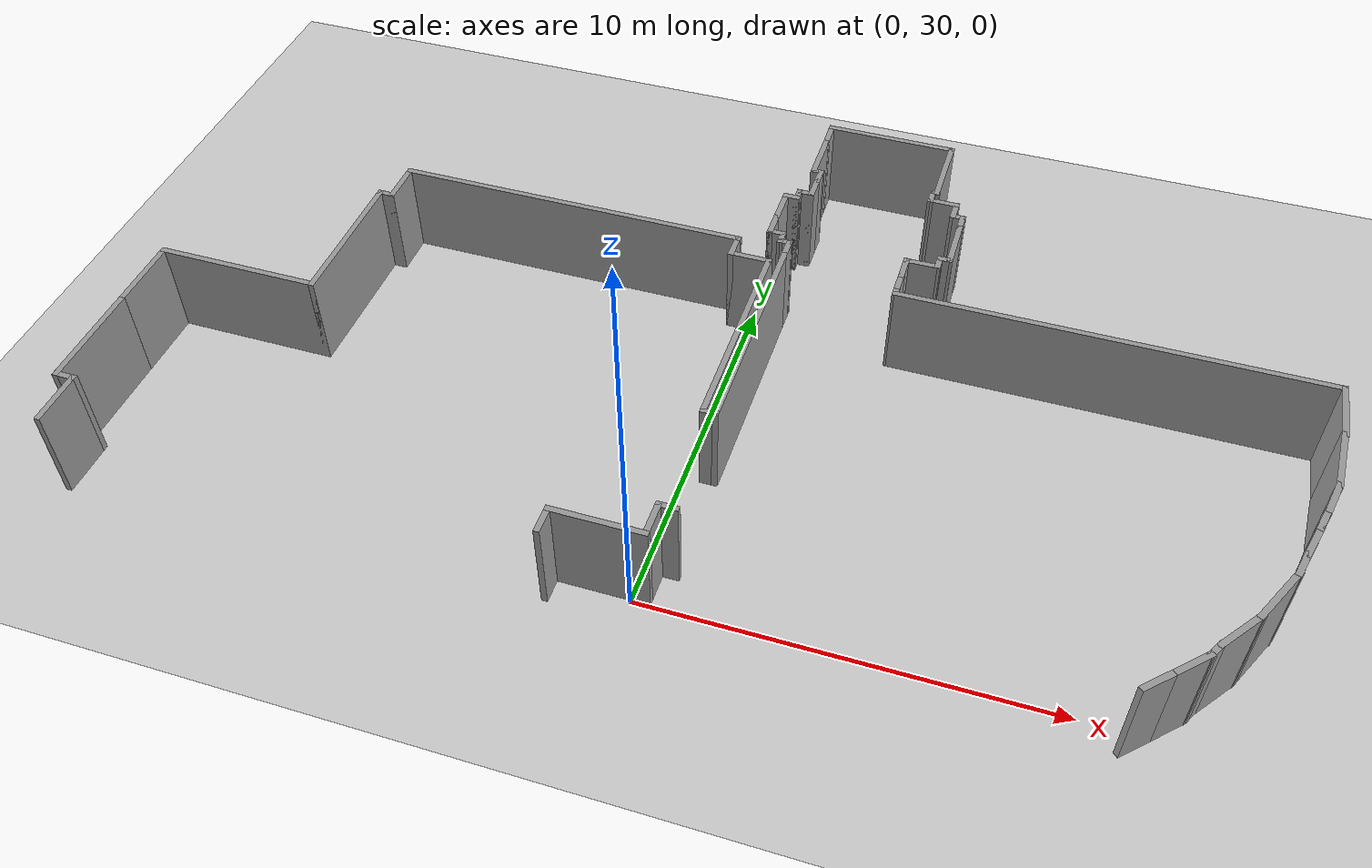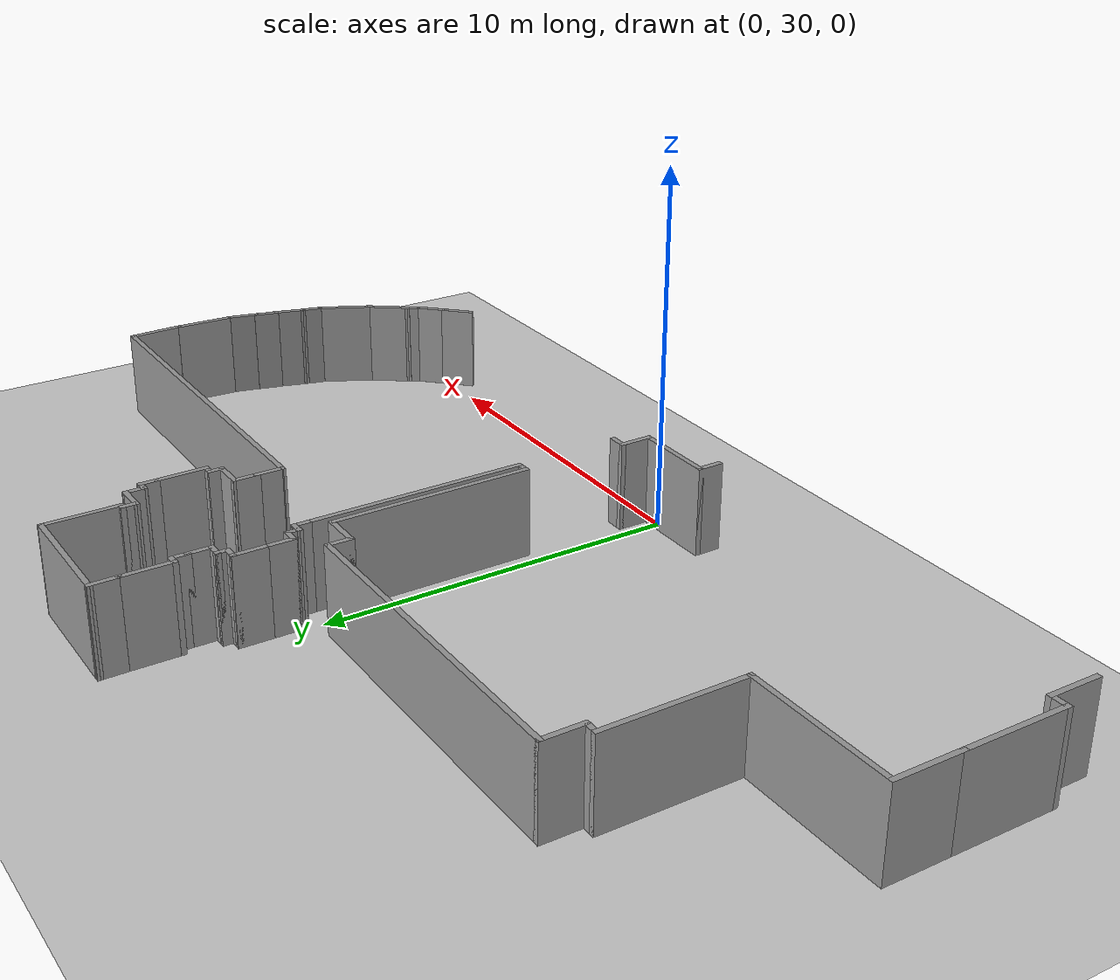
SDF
<sdf version="1.6">
 <world name="default">
  <model name="ground_plane">
   <static>1</static>
   <link name="link">
    <collision name="collision">
     <geometry><plane><normal>0 0 1</normal><size>100 100</size></plane></geometry>
     <surface><friction><ode><mu>100</mu><mu2>50</mu2></ode></friction></surface>
    </collision>
    <visual name="visual">
     <cast_shadows>0</cast_shadows>
     <geometry><plane><normal>0 0 1</normal><size>100 100</size></plane></geometry>
     <material>
      <script><uri>file://media/materials/scripts/gazebo.material</uri><name>Gazebo/Grey</name></script>
     </material>
    </visual>
   </link>
  </model>
  <model name="volen.world">
   <pose>-0.11623 -0.129362 0 0 -0 0</pose>
   <link name="Wall_100">
    <collision name="Wall_100_Collision">
     <geometry><box><size>1.35577 0.15 2.5</size></box></geometry>
     <pose>0 0 1.25 0 -0 0</pose>
    </collision>
    <visual name="Wall_100_Visual">
     <pose>0 0 1.25 0 -0 0</pose>
     <geometry><box><size>1.35577 0.15 2.5</size></box></geometry>
     <material>
      <script><uri>file://media/materials/scripts/gazebo.material</uri><name>Gazebo/Grey</name></script>
      <ambient>1 1 1 1</ambient>
     </material>
    </visual>
    <pose>12.7994 31.5829 0 0 0 -2.21664</pose>
   </link>
   <link name="Wall_101">
    <collision name="Wall_101_Collision">
     <geometry><box><size>0.5 0.15 2.5</size></box></geometry>
     <pose>0 0 1.25 0 -0 0</pose>
    </collision>
    <visual name="Wall_101_Visual">
     <pose>0 0 1.25 0 -0 0</pose>
     <geometry><box><size>0.5 0.15 2.5</size></box></geometry>
     <material>
      <script><uri>file://media/materials/scripts/gazebo.material</uri><name>Gazebo/Grey</name></script>
      <ambient>1 1 1 1</ambient>
     </material>
    </visual>
    <pose>12.349 30.9499 0 0 0 -2.0944</pose>
   </link>
   <link name="Wall_102">
    <collision name="Wall_102_Collision">
     <geometry><box><size>1 0.15 2.5</size></box></geometry>
     <pose>0 0 1.25 0 -0 0</pose>
    </collision>
    <visual name="Wall_102_Visual">
     <pose>0 0 1.25 0 -0 0</pose>
     <geometry><box><size>1 0.15 2.5</size></box></geometry>
     <material>
      <script><uri>file://media/materials/scripts/gazebo.material</uri><name>Gazebo/Grey</name></script>
      <ambient>1 1 1 1</ambient>
     </material>
    </visual>
    <pose>11.961 30.4978 0 0 0 -2.35619</pose>
   </link>
   <link name="Wall_103">
    <collision name="Wall_103_Collision">
     <geometry><box><size>1 0.15 2.5</size></box></geometry>
     <pose>0 0 1.25 0 -0 0</pose>
    </collision>
    <visual name="Wall_103_Visual">
     <pose>0 0 1.25 0 -0 0</pose>
     <geometry><box><size>1 0.15 2.5</size></box></geometry>
     <material>
      <script><uri>file://media/materials/scripts/gazebo.material</uri><name>Gazebo/Grey</name></script>
      <ambient>1 1 1 1</ambient>
     </material>
    </visual>
    <pose>11.36 29.8968 0 0 0 -2.35619</pose>
   </link>
   <link name="Wall_303">
    <collision name="Wall_303_Collision">
     <geometry><box><size>0.55 0.15 2.5</size></box></geometry>
     <pose>0 0 1.25 0 -0 0</pose>
    </collision>
    <visual name="Wall_303_Visual">
     <pose>0 0 1.25 0 -0 0</pose>
     <geometry><box><size>0.55 0.15 2.5</size></box></geometry>
     <material>
      <script><uri>file://media/materials/scripts/gazebo.material</uri><name>Gazebo/Grey</name></script>
      <ambient>1 1 1 1</ambient>
     </material>
    </visual>
    <pose>0.69523 31.1034 0 0 -0 3.14159</pose>
   </link>
   <link name="Wall_305">
    <collision name="Wall_305_Collision">
     <geometry><box><size>1 0.15 2.5</size></box></geometry>
     <pose>0 0 1.25 0 -0 0</pose>
    </collision>
    <visual name="Wall_305_Visual">
     <pose>0 0 1.25 0 -0 0</pose>
     <geometry><box><size>1 0.15 2.5</size></box></geometry>
     <material>
      <script><uri>file://media/materials/scripts/gazebo.material</uri><name>Gazebo/Grey</name></script>
      <ambient>1 1 1 1</ambient>
     </material>
    </visual>
    <pose>0.49523 30.6784 0 0 0 -1.5708</pose>
   </link>
   <link name="Wall_306">
    <collision name="Wall_306_Collision">
     <geometry><box><size>2.4 0.15 2.5</size></box></geometry>
     <pose>0 0 1.25 0 -0 0</pose>
    </collision>
    <visual name="Wall_306_Visual">
     <pose>0 0 1.25 0 -0 0</pose>
     <geometry><box><size>2.4 0.15 2.5</size></box></geometry>
     <material>
      <script><uri>file://media/materials/scripts/gazebo.material</uri><name>Gazebo/Grey</name></script>
      <ambient>1 1 1 1</ambient>
     </material>
    </visual>
    <pose>-0.62977 30.2534 0 0 -0 3.14159</pose>
   </link>
   <link name="Wall_308">
    <collision name="Wall_308_Collision">
     <geometry><box><size>0.756924 0.15 2.5</size></box></geometry>
     <pose>0 0 1.25 0 -0 0</pose>
    </collision>
    <visual name="Wall_308_Visual">
     <pose>0 0 1.25 0 -0 0</pose>
     <geometry><box><size>0.756924 0.15 2.5</size></box></geometry>
     <material>
      <script><uri>file://media/materials/scripts/gazebo.material</uri><name>Gazebo/Grey</name></script>
      <ambient>1 1 1 1</ambient>
     </material>
    </visual>
    <pose>-1.75477 29.9499 0 0 0 -1.5708</pose>
   </link>
   <link name="Wall_335">
    <collision name="Wall_335_Collision">
     <geometry><box><size>1.5 0.15 2.5</size></box></geometry>
     <pose>0 0 1.25 0 -0 0</pose>
    </collision>
    <visual name="Wall_335_Visual">
     <pose>0 0 1.25 0 -0 0</pose>
     <geometry><box><size>1.5 0.15 2.5</size></box></geometry>
     <material>
      <script><uri>file://media/materials/scripts/gazebo.material</uri><name>Gazebo/Grey</name></script>
      <ambient>1 1 1 1</ambient>
     </material>
    </visual>
    <pose>-13.8948 29.8614 0 0 -0 1.5708</pose>
   </link>
   <link name="Wall_336">
    <collision name="Wall_336_Collision">
     <geometry><box><size>0.6 0.15 2.5</size></box></geometry>
     <pose>0 0 1.25 0 -0 0</pose>
    </collision>
    <visual name="Wall_336_Visual">
     <pose>0 0 1.25 0 -0 0</pose>
     <geometry><box><size>0.6 0.15 2.5</size></box></geometry>
     <material>
      <script><uri>file://media/materials/scripts/gazebo.material</uri><name>Gazebo/Grey</name></script>
      <ambient>1 1 1 1</ambient>
     </material>
    </visual>
    <pose>-14.1198 30.5364 0 0 -0 3.14159</pose>
   </link>
   <link name="Wall_338">
    <collision name="Wall_338_Collision">
     <geometry><box><size>3 0.15 2.5</size></box></geometry>
     <pose>0 0 1.25 0 -0 0</pose>
    </collision>
    <visual name="Wall_338_Visual">
     <pose>0 0 1.25 0 -0 0</pose>
     <geometry><box><size>3 0.15 2.5</size></box></geometry>
     <material>
      <script><uri>file://media/materials/scripts/gazebo.material</uri><name>Gazebo/Grey</name></script>
      <ambient>1 1 1 1</ambient>
     </material>
    </visual>
    <pose>-14.3448 31.9614 0 0 -0 1.5708</pose>
   </link>
   <link name="Wall_340">
    <collision name="Wall_340_Collision">
     <geometry><box><size>1.98692 0.15 2.5</size></box></geometry>
     <pose>0 0 1.25 0 -0 0</pose>
    </collision>
    <visual name="Wall_340_Visual">
     <pose>0 0 1.25 0 -0 0</pose>
     <geometry><box><size>1.98692 0.15 2.5</size></box></geometry>
     <material>
      <script><uri>file://media/materials/scripts/gazebo.material</uri><name>Gazebo/Grey</name></script>
      <ambient>1 1 1 1</ambient>
     </material>
    </visual>
    <pose>-14.3448 34.3049 0 0 -0 1.5708</pose>
   </link>
   <link name="Wall_341">
    <collision name="Wall_341_Collision">
     <geometry><box><size>4.39 0.15 2.5</size></box></geometry>
     <pose>0 0 1.25 0 -0 0</pose>
    </collision>
    <visual name="Wall_341_Visual">
     <pose>0 0 1.25 0 -0 0</pose>
     <geometry><box><size>4.39 0.15 2.5</size></box></geometry>
     <material>
      <script><uri>file://media/materials/scripts/gazebo.material</uri><name>Gazebo/Grey</name></script>
      <ambient>1 1 1 1</ambient>
     </material>
    </visual>
    <pose>-12.2248 35.2234 0 0 -0 0</pose>
   </link>
   <link name="Wall_343">
    <collision name="Wall_343_Collision">
     <geometry><box><size>4 0.15 2.5</size></box></geometry>
     <pose>0 0 1.25 0 -0 0</pose>
    </collision>
    <visual name="Wall_343_Visual">
     <pose>0 0 1.25 0 -0 0</pose>
     <geometry><box><size>4 0.15 2.5</size></box></geometry>
     <material>
      <script><uri>file://media/materials/scripts/gazebo.material</uri><name>Gazebo/Grey</name></script>
      <ambient>1 1 1 1</ambient>
     </material>
    </visual>
    <pose>-10.1048 37.1484 0 0 -0 1.5708</pose>
   </link>
   <link name="Wall_344">
    <collision name="Wall_344_Collision">
     <geometry><box><size>0.5 0.15 2.5</size></box></geometry>
     <pose>0 0 1.25 0 -0 0</pose>
    </collision>
    <visual name="Wall_344_Visual">
     <pose>0 0 1.25 0 -0 0</pose>
     <geometry><box><size>0.5 0.15 2.5</size></box></geometry>
     <material>
      <script><uri>file://media/materials/scripts/gazebo.material</uri><name>Gazebo/Grey</name></script>
      <ambient>1 1 1 1</ambient>
     </material>
    </visual>
    <pose>-9.92977 39.0734 0 0 -0 0</pose>
   </link>
   <link name="Wall_345">
    <collision name="Wall_345_Collision">
     <geometry><box><size>1.25 0.15 2.5</size></box></geometry>
     <pose>0 0 1.25 0 -0 0</pose>
    </collision>
    <visual name="Wall_345_Visual">
     <pose>0 0 1.25 0 -0 0</pose>
     <geometry><box><size>1.25 0.15 2.5</size></box></geometry>
     <material>
      <script><uri>file://media/materials/scripts/gazebo.material</uri><name>Gazebo/Grey</name></script>
      <ambient>1 1 1 1</ambient>
     </material>
    </visual>
    <pose>-9.75477 39.6234 0 0 -0 1.5708</pose>
   </link>
   <link name="Wall_346">
    <collision name="Wall_346_Collision">
     <geometry><box><size>9.47 0.15 2.5</size></box></geometry>
     <pose>0 0 1.25 0 -0 0</pose>
    </collision>
    <visual name="Wall_346_Visual">
     <pose>0 0 1.25 0 -0 0</pose>
     <geometry><box><size>9.47 0.15 2.5</size></box></geometry>
     <material>
      <script><uri>file://media/materials/scripts/gazebo.material</uri><name>Gazebo/Grey</name></script>
      <ambient>1 1 1 1</ambient>
     </material>
    </visual>
    <pose>-5.09477 40.1734 0 0 -0 0</pose>
   </link>
   <link name="Wall_348">
    <collision name="Wall_348_Collision">
     <geometry><box><size>0.75 0.15 2.5</size></box></geometry>
     <pose>0 0 1.25 0 -0 0</pose>
    </collision>
    <visual name="Wall_348_Visual">
     <pose>0 0 1.25 0 -0 0</pose>
     <geometry><box><size>0.75 0.15 2.5</size></box></geometry>
     <material>
      <script><uri>file://media/materials/scripts/gazebo.material</uri><name>Gazebo/Grey</name></script>
      <ambient>1 1 1 1</ambient>
     </material>
    </visual>
    <pose>-0.43477 39.8734 0 0 0 -1.5708</pose>
   </link>
   <link name="Wall_349">
    <collision name="Wall_349_Collision">
     <geometry><box><size>1.15 0.15 2.5</size></box></geometry>
     <pose>0 0 1.25 0 -0 0</pose>
    </collision>
    <visual name="Wall_349_Visual">
     <pose>0 0 1.25 0 -0 0</pose>
     <geometry><box><size>1.15 0.15 2.5</size></box></geometry>
     <material>
      <script><uri>file://media/materials/scripts/gazebo.material</uri><name>Gazebo/Grey</name></script>
      <ambient>1 1 1 1</ambient>
     </material>
    </visual>
    <pose>0.06523 39.5734 0 0 -0 0</pose>
   </link>
   <link name="Wall_352">
    <collision name="Wall_352_Collision">
     <geometry><box><size>5.65 0.15 2.5</size></box></geometry>
     <pose>0 0 1.25 0 -0 0</pose>
    </collision>
    <visual name="Wall_352_Visual">
     <pose>0 0 1.25 0 -0 0</pose>
     <geometry><box><size>5.65 0.15 2.5</size></box></geometry>
     <material>
      <script><uri>file://media/materials/scripts/gazebo.material</uri><name>Gazebo/Grey</name></script>
      <ambient>1 1 1 1</ambient>
     </material>
    </visual>
    <pose>0.56523 36.8234 0 0 0 -1.5708</pose>
   </link>
   <link name="Wall_354">
    <collision name="Wall_354_Collision">
     <geometry><box><size>0.46 0.15 2.5</size></box></geometry>
     <pose>0 0 1.25 0 -0 0</pose>
    </collision>
    <visual name="Wall_354_Visual">
     <pose>0 0 1.25 0 -0 0</pose>
     <geometry><box><size>0.46 0.15 2.5</size></box></geometry>
     <material>
      <script><uri>file://media/materials/scripts/gazebo.material</uri><name>Gazebo/Grey</name></script>
      <ambient>1 1 1 1</ambient>
     </material>
    </visual>
    <pose>0.72023 34.0734 0 0 -0 0</pose>
   </link>
   <link name="Wall_356">
    <collision name="Wall_356_Collision">
     <geometry><box><size>6 0.15 2.5</size></box></geometry>
     <pose>0 0 1.25 0 -0 0</pose>
    </collision>
    <visual name="Wall_356_Visual">
     <pose>0 0 1.25 0 -0 0</pose>
     <geometry><box><size>6 0.15 2.5</size></box></geometry>
     <material>
      <script><uri>file://media/materials/scripts/gazebo.material</uri><name>Gazebo/Grey</name></script>
      <ambient>1 1 1 1</ambient>
     </material>
    </visual>
    <pose>0.87523 36.9984 0 0 -0 1.5708</pose>
   </link>
   <link name="Wall_358">
    <collision name="Wall_358_Collision">
     <geometry><box><size>0.65 0.15 2.5</size></box></geometry>
     <pose>0 0 1.25 0 -0 0</pose>
    </collision>
    <visual name="Wall_358_Visual">
     <pose>0 0 1.25 0 -0 0</pose>
     <geometry><box><size>0.65 0.15 2.5</size></box></geometry>
     <material>
      <script><uri>file://media/materials/scripts/gazebo.material</uri><name>Gazebo/Grey</name></script>
      <ambient>1 1 1 1</ambient>
     </material>
    </visual>
    <pose>0.87523 40.1734 0 0 -0 1.5708</pose>
   </link>
   <link name="Wall_360">
    <collision name="Wall_360_Collision">
     <geometry><box><size>0.395763 0.15 2.5</size></box></geometry>
     <pose>0 0 1.25 0 -0 0</pose>
    </collision>
    <visual name="Wall_360_Visual">
     <pose>0 0 1.25 0 -0 0</pose>
     <geometry><box><size>0.395763 0.15 2.5</size></box></geometry>
     <material>
      <script><uri>file://media/materials/scripts/gazebo.material</uri><name>Gazebo/Grey</name></script>
      <ambient>1 1 1 1</ambient>
     </material>
    </visual>
    <pose>0.75223 40.4214 0 0 0 -3.12533</pose>
   </link>
   <link name="Wall_362">
    <collision name="Wall_362_Collision">
     <geometry><box><size>0.45 0.15 2.5</size></box></geometry>
     <pose>0 0 1.25 0 -0 0</pose>
    </collision>
    <visual name="Wall_362_Visual">
     <pose>0 0 1.25 0 -0 0</pose>
     <geometry><box><size>0.45 0.15 2.5</size></box></geometry>
     <material>
      <script><uri>file://media/materials/scripts/gazebo.material</uri><name>Gazebo/Grey</name></script>
      <ambient>1 1 1 1</ambient>
     </material>
    </visual>
    <pose>0.62923 40.5694 0 0 -0 1.5708</pose>
   </link>
   <link name="Wall_364">
    <collision name="Wall_364_Collision">
     <geometry><box><size>0.5 0.15 2.5</size></box></geometry>
     <pose>0 0 1.25 0 -0 0</pose>
    </collision>
    <visual name="Wall_364_Visual">
     <pose>0 0 1.25 0 -0 0</pose>
     <geometry><box><size>0.5 0.15 2.5</size></box></geometry>
     <material>
      <script><uri>file://media/materials/scripts/gazebo.material</uri><name>Gazebo/Grey</name></script>
      <ambient>1 1 1 1</ambient>
     </material>
    </visual>
    <pose>0.45423 40.7194 0 0 -0 3.14159</pose>
   </link>
   <link name="Wall_365">
    <collision name="Wall_365_Collision">
     <geometry><box><size>0.75 0.15 2.5</size></box></geometry>
     <pose>0 0 1.25 0 -0 0</pose>
    </collision>
    <visual name="Wall_365_Visual">
     <pose>0 0 1.25 0 -0 0</pose>
     <geometry><box><size>0.75 0.15 2.5</size></box></geometry>
     <material>
      <script><uri>file://media/materials/scripts/gazebo.material</uri><name>Gazebo/Grey</name></script>
      <ambient>1 1 1 1</ambient>
     </material>
    </visual>
    <pose>0.27923 41.0194 0 0 -0 1.5708</pose>
   </link>
   <link name="Wall_367">
    <collision name="Wall_367_Collision">
     <geometry><box><size>1.1 0.15 2.5</size></box></geometry>
     <pose>0 0 1.25 0 -0 0</pose>
    </collision>
    <visual name="Wall_367_Visual">
     <pose>0 0 1.25 0 -0 0</pose>
     <geometry><box><size>1.1 0.15 2.5</size></box></geometry>
     <material>
      <script><uri>file://media/materials/scripts/gazebo.material</uri><name>Gazebo/Grey</name></script>
      <ambient>1 1 1 1</ambient>
     </material>
    </visual>
    <pose>0.27923 41.7944 0 0 -0 1.5708</pose>
   </link>
   <link name="Wall_369">
    <collision name="Wall_369_Collision">
     <geometry><box><size>0.45 0.15 2.5</size></box></geometry>
     <pose>0 0 1.25 0 -0 0</pose>
    </collision>
    <visual name="Wall_369_Visual">
     <pose>0 0 1.25 0 -0 0</pose>
     <geometry><box><size>0.45 0.15 2.5</size></box></geometry>
     <material>
      <script><uri>file://media/materials/scripts/gazebo.material</uri><name>Gazebo/Grey</name></script>
      <ambient>1 1 1 1</ambient>
     </material>
    </visual>
    <pose>0.42923 42.2694 0 0 -0 0</pose>
   </link>
   <link name="Wall_371">
    <collision name="Wall_371_Collision">
     <geometry><box><size>0.42 0.15 2.5</size></box></geometry>
     <pose>0 0 1.25 0 -0 0</pose>
    </collision>
    <visual name="Wall_371_Visual">
     <pose>0 0 1.25 0 -0 0</pose>
     <geometry><box><size>0.42 0.15 2.5</size></box></geometry>
     <material>
      <script><uri>file://media/materials/scripts/gazebo.material</uri><name>Gazebo/Grey</name></script>
      <ambient>1 1 1 1</ambient>
     </material>
    </visual>
    <pose>0.57923 42.4044 0 0 -0 1.5708</pose>
   </link>
   <link name="Wall_373">
    <collision name="Wall_373_Collision">
     <geometry><box><size>0.48 0.15 2.5</size></box></geometry>
     <pose>0 0 1.25 0 -0 0</pose>
    </collision>
    <visual name="Wall_373_Visual">
     <pose>0 0 1.25 0 -0 0</pose>
     <geometry><box><size>0.48 0.15 2.5</size></box></geometry>
     <material>
      <script><uri>file://media/materials/scripts/gazebo.material</uri><name>Gazebo/Grey</name></script>
      <ambient>1 1 1 1</ambient>
     </material>
    </visual>
    <pose>0.74423 42.5394 0 0 -0 0</pose>
   </link>
   <link name="Wall_375">
    <collision name="Wall_375_Collision">
     <geometry><box><size>0.75 0.15 2.5</size></box></geometry>
     <pose>0 0 1.25 0 -0 0</pose>
    </collision>
    <visual name="Wall_375_Visual">
     <pose>0 0 1.25 0 -0 0</pose>
     <geometry><box><size>0.75 0.15 2.5</size></box></geometry>
     <material>
      <script><uri>file://media/materials/scripts/gazebo.material</uri><name>Gazebo/Grey</name></script>
      <ambient>1 1 1 1</ambient>
     </material>
    </visual>
    <pose>0.90923 42.8394 0 0 -0 1.5708</pose>
   </link>
   <link name="Wall_377">
    <collision name="Wall_377_Collision">
     <geometry><box><size>0.55 0.15 2.5</size></box></geometry>
     <pose>0 0 1.25 0 -0 0</pose>
    </collision>
    <visual name="Wall_377_Visual">
     <pose>0 0 1.25 0 -0 0</pose>
     <geometry><box><size>0.55 0.15 2.5</size></box></geometry>
     <material>
      <script><uri>file://media/materials/scripts/gazebo.material</uri><name>Gazebo/Grey</name></script>
      <ambient>1 1 1 1</ambient>
     </material>
    </visual>
    <pose>0.90923 43.3394 0 0 -0 1.5708</pose>
   </link>
   <link name="Wall_379">
    <collision name="Wall_379_Collision">
     <geometry><box><size>0.35 0.15 2.5</size></box></geometry>
     <pose>0 0 1.25 0 -0 0</pose>
    </collision>
    <visual name="Wall_379_Visual">
     <pose>0 0 1.25 0 -0 0</pose>
     <geometry><box><size>0.35 0.15 2.5</size></box></geometry>
     <material>
      <script><uri>file://media/materials/scripts/gazebo.material</uri><name>Gazebo/Grey</name></script>
      <ambient>1 1 1 1</ambient>
     </material>
    </visual>
    <pose>0.80923 43.5394 0 0 -0 3.14159</pose>
   </link>
   <link name="Wall_383">
    <collision name="Wall_383_Collision">
     <geometry><box><size>1.5 0.15 2.5</size></box></geometry>
     <pose>0 0 1.25 0 -0 0</pose>
    </collision>
    <visual name="Wall_383_Visual">
     <pose>0 0 1.25 0 -0 0</pose>
     <geometry><box><size>1.5 0.15 2.5</size></box></geometry>
     <material>
      <script><uri>file://media/materials/scripts/gazebo.material</uri><name>Gazebo/Grey</name></script>
      <ambient>1 1 1 1</ambient>
     </material>
    </visual>
    <pose>0.70923 44.2144 0 0 -0 1.5708</pose>
   </link>
   <link name="Wall_385">
    <collision name="Wall_385_Collision">
     <geometry><box><size>0.859969 0.15 2.5</size></box></geometry>
     <pose>0 0 1.25 0 -0 0</pose>
    </collision>
    <visual name="Wall_385_Visual">
     <pose>0 0 1.25 0 -0 0</pose>
     <geometry><box><size>0.859969 0.15 2.5</size></box></geometry>
     <material>
      <script><uri>file://media/materials/scripts/gazebo.material</uri><name>Gazebo/Grey</name></script>
      <ambient>1 1 1 1</ambient>
     </material>
    </visual>
    <pose>0.702336 45.2443 0 0 -0 1.59022</pose>
   </link>
   <link name="Wall_387">
    <collision name="Wall_387_Collision">
     <geometry><box><size>1.65654 0.15 2.5</size></box></geometry>
     <pose>0 0 1.25 0 -0 0</pose>
    </collision>
    <visual name="Wall_387_Visual">
     <pose>0 0 1.25 0 -0 0</pose>
     <geometry><box><size>1.65654 0.15 2.5</size></box></geometry>
     <material>
      <script><uri>file://media/materials/scripts/gazebo.material</uri><name>Gazebo/Grey</name></script>
      <ambient>1 1 1 1</ambient>
     </material>
    </visual>
    <pose>14.6739 38.5776 0 0 0 -1.54557</pose>
   </link>
   <link name="Wall_39">
    <collision name="Wall_39_Collision">
     <geometry><box><size>3.55 0.15 2.5</size></box></geometry>
     <pose>0 0 1.25 0 -0 0</pose>
    </collision>
    <visual name="Wall_39_Visual">
     <pose>0 0 1.25 0 -0 0</pose>
     <geometry><box><size>3.55 0.15 2.5</size></box></geometry>
     <material>
      <script><uri>file://media/materials/scripts/gazebo.material</uri><name>Gazebo/Grey</name></script>
      <ambient>1 1 1 1</ambient>
     </material>
    </visual>
    <pose>2.39544 45.5992 0 0 -0 0</pose>
   </link>
   <link name="Wall_41">
    <collision name="Wall_41_Collision">
     <geometry><box><size>2.152 0.15 2.5</size></box></geometry>
     <pose>0 0 1.25 0 -0 0</pose>
    </collision>
    <visual name="Wall_41_Visual">
     <pose>0 0 1.25 0 -0 0</pose>
     <geometry><box><size>2.152 0.15 2.5</size></box></geometry>
     <material>
      <script><uri>file://media/materials/scripts/gazebo.material</uri><name>Gazebo/Grey</name></script>
      <ambient>1 1 1 1</ambient>
     </material>
    </visual>
    <pose>4.09544 44.5982 0 0 0 -1.5708</pose>
   </link>
   <link name="Wall_48">
    <collision name="Wall_48_Collision">
     <geometry><box><size>0.25 0.15 2.5</size></box></geometry>
     <pose>0 0 1.25 0 -0 0</pose>
    </collision>
    <visual name="Wall_48_Visual">
     <pose>0 0 1.25 0 -0 0</pose>
     <geometry><box><size>0.25 0.15 2.5</size></box></geometry>
     <material>
      <script><uri>file://media/materials/scripts/gazebo.material</uri><name>Gazebo/Grey</name></script>
      <ambient>1 1 1 1</ambient>
     </material>
    </visual>
    <pose>4.04544 43.5972 0 0 -0 3.14159</pose>
   </link>
   <link name="Wall_49">
    <collision name="Wall_49_Collision">
     <geometry><box><size>0.5 0.15 2.5</size></box></geometry>
     <pose>0 0 1.25 0 -0 0</pose>
    </collision>
    <visual name="Wall_49_Visual">
     <pose>0 0 1.25 0 -0 0</pose>
     <geometry><box><size>0.5 0.15 2.5</size></box></geometry>
     <material>
      <script><uri>file://media/materials/scripts/gazebo.material</uri><name>Gazebo/Grey</name></script>
      <ambient>1 1 1 1</ambient>
     </material>
    </visual>
    <pose>3.99544 43.4222 0 0 0 -1.5708</pose>
   </link>
   <link name="Wall_50">
    <collision name="Wall_50_Collision">
     <geometry><box><size>0.848806 0.15 2.5</size></box></geometry>
     <pose>0 0 1.25 0 -0 0</pose>
    </collision>
    <visual name="Wall_50_Visual">
     <pose>0 0 1.25 0 -0 0</pose>
     <geometry><box><size>0.848806 0.15 2.5</size></box></geometry>
     <material>
      <script><uri>file://media/materials/scripts/gazebo.material</uri><name>Gazebo/Grey</name></script>
      <ambient>1 1 1 1</ambient>
     </material>
    </visual>
    <pose>4.34484 43.2498 0 0 -0 0.00739</pose>
   </link>
   <link name="Wall_68">
    <collision name="Wall_68_Collision">
     <geometry><box><size>0.624347 0.15 2.5</size></box></geometry>
     <pose>0 0 1.25 0 -0 0</pose>
    </collision>
    <visual name="Wall_68_Visual">
     <pose>0 0 1.25 0 -0 0</pose>
     <geometry><box><size>0.624347 0.15 2.5</size></box></geometry>
     <material>
      <script><uri>file://media/materials/scripts/gazebo.material</uri><name>Gazebo/Grey</name></script>
      <ambient>1 1 1 1</ambient>
     </material>
    </visual>
    <pose>4.69423 43.0154 0 0 0 -1.5708</pose>
   </link>
   <link name="Wall_69">
    <collision name="Wall_69_Collision">
     <geometry><box><size>0.40707 0.15 2.5</size></box></geometry>
     <pose>0 0 1.25 0 -0 0</pose>
    </collision>
    <visual name="Wall_69_Visual">
     <pose>0 0 1.25 0 -0 0</pose>
     <geometry><box><size>0.40707 0.15 2.5</size></box></geometry>
     <material>
      <script><uri>file://media/materials/scripts/gazebo.material</uri><name>Gazebo/Grey</name></script>
      <ambient>1 1 1 1</ambient>
     </material>
    </visual>
    <pose>4.82273 42.7754 0 0 0 -0.023342</pose>
   </link>
   <link name="Wall_70">
    <collision name="Wall_70_Collision">
     <geometry><box><size>0.568673 0.15 2.5</size></box></geometry>
     <pose>0 0 1.25 0 -0 0</pose>
    </collision>
    <visual name="Wall_70_Visual">
     <pose>0 0 1.25 0 -0 0</pose>
     <geometry><box><size>0.568673 0.15 2.5</size></box></geometry>
     <material>
      <script><uri>file://media/materials/scripts/gazebo.material</uri><name>Gazebo/Grey</name></script>
      <ambient>1 1 1 1</ambient>
     </material>
    </visual>
    <pose>4.94834 42.563 0 0 0 -1.58462</pose>
   </link>
   <link name="Wall_72">
    <collision name="Wall_72_Collision">
     <geometry><box><size>1.50005 0.15 2.5</size></box></geometry>
     <pose>0 0 1.25 0 -0 0</pose>
    </collision>
    <visual name="Wall_72_Visual">
     <pose>0 0 1.25 0 -0 0</pose>
     <geometry><box><size>1.50005 0.15 2.5</size></box></geometry>
     <material>
      <script><uri>file://media/materials/scripts/gazebo.material</uri><name>Gazebo/Grey</name></script>
      <ambient>1 1 1 1</ambient>
     </material>
    </visual>
    <pose>4.95392 41.6787 0 0 0 -1.56661</pose>
   </link>
   <link name="Wall_76">
    <collision name="Wall_76_Collision">
     <geometry><box><size>0.393057 0.15 2.5</size></box></geometry>
     <pose>0 0 1.25 0 -0 0</pose>
    </collision>
    <visual name="Wall_76_Visual">
     <pose>0 0 1.25 0 -0 0</pose>
     <geometry><box><size>0.393057 0.15 2.5</size></box></geometry>
     <material>
      <script><uri>file://media/materials/scripts/gazebo.material</uri><name>Gazebo/Grey</name></script>
      <ambient>1 1 1 1</ambient>
     </material>
    </visual>
    <pose>4.83526 41.0008 0 0 0 -3.11775</pose>
   </link>
   <link name="Wall_77">
    <collision name="Wall_77_Collision">
     <geometry><box><size>0.472 0.15 2.5</size></box></geometry>
     <pose>0 0 1.25 0 -0 0</pose>
    </collision>
    <visual name="Wall_77_Visual">
     <pose>0 0 1.25 0 -0 0</pose>
     <geometry><box><size>0.472 0.15 2.5</size></box></geometry>
     <material>
      <script><uri>file://media/materials/scripts/gazebo.material</uri><name>Gazebo/Grey</name></script>
      <ambient>1 1 1 1</ambient>
     </material>
    </visual>
    <pose>4.70811 40.8369 0 0 0 -1.5708</pose>
   </link>
   <link name="Wall_78">
    <collision name="Wall_78_Collision">
     <geometry><box><size>0.956709 0.15 2.5</size></box></geometry>
     <pose>0 0 1.25 0 -0 0</pose>
    </collision>
    <visual name="Wall_78_Visual">
     <pose>0 0 1.25 0 -0 0</pose>
     <geometry><box><size>0.956709 0.15 2.5</size></box></geometry>
     <material>
      <script><uri>file://media/materials/scripts/gazebo.material</uri><name>Gazebo/Grey</name></script>
      <ambient>1 1 1 1</ambient>
     </material>
    </visual>
    <pose>4.3105 40.6675 0 0 0 -3.12062</pose>
   </link>
   <link name="Wall_80">
    <collision name="Wall_80_Collision">
     <geometry><box><size>0.761306 0.15 2.5</size></box></geometry>
     <pose>0 0 1.25 0 -0 0</pose>
    </collision>
    <visual name="Wall_80_Visual">
     <pose>0 0 1.25 0 -0 0</pose>
     <geometry><box><size>0.761306 0.15 2.5</size></box></geometry>
     <material>
      <script><uri>file://media/materials/scripts/gazebo.material</uri><name>Gazebo/Grey</name></script>
      <ambient>1 1 1 1</ambient>
     </material>
    </visual>
    <pose>3.90723 40.359 0 0 0 -1.5708</pose>
   </link>
   <link name="Wall_82">
    <collision name="Wall_82_Collision">
     <geometry><box><size>0.75 0.15 2.5</size></box></geometry>
     <pose>0 0 1.25 0 -0 0</pose>
    </collision>
    <visual name="Wall_82_Visual">
     <pose>0 0 1.25 0 -0 0</pose>
     <geometry><box><size>0.75 0.15 2.5</size></box></geometry>
     <material>
      <script><uri>file://media/materials/scripts/gazebo.material</uri><name>Gazebo/Grey</name></script>
      <ambient>1 1 1 1</ambient>
     </material>
    </visual>
    <pose>3.90723 39.7534 0 0 0 -1.5708</pose>
   </link>
   <link name="Wall_83">
    <collision name="Wall_83_Collision">
     <geometry><box><size>0.25 0.15 2.5</size></box></geometry>
     <pose>0 0 1.25 0 -0 0</pose>
    </collision>
    <visual name="Wall_83_Visual">
     <pose>0 0 1.25 0 -0 0</pose>
     <geometry><box><size>0.25 0.15 2.5</size></box></geometry>
     <material>
      <script><uri>file://media/materials/scripts/gazebo.material</uri><name>Gazebo/Grey</name></script>
      <ambient>1 1 1 1</ambient>
     </material>
    </visual>
    <pose>3.90723 39.4034 0 0 0 -1.5708</pose>
   </link>
   <link name="Wall_84">
    <collision name="Wall_84_Collision">
     <geometry><box><size>10.8863 0.15 2.5</size></box></geometry>
     <pose>0 0 1.25 0 -0 0</pose>
    </collision>
    <visual name="Wall_84_Visual">
     <pose>0 0 1.25 0 -0 0</pose>
     <geometry><box><size>10.8863 0.15 2.5</size></box></geometry>
     <material>
      <script><uri>file://media/materials/scripts/gazebo.material</uri><name>Gazebo/Grey</name></script>
      <ambient>1 1 1 1</ambient>
     </material>
    </visual>
    <pose>9.27538 39.3477 0 0 0 -0.001059</pose>
   </link>
   <link name="Wall_89">
    <collision name="Wall_89_Collision">
     <geometry><box><size>1.76409 0.15 2.5</size></box></geometry>
     <pose>0 0 1.25 0 -0 0</pose>
    </collision>
    <visual name="Wall_89_Visual">
     <pose>0 0 1.25 0 -0 0</pose>
     <geometry><box><size>1.76409 0.15 2.5</size></box></geometry>
     <material>
      <script><uri>file://media/materials/scripts/gazebo.material</uri><name>Gazebo/Grey</name></script>
      <ambient>1 1 1 1</ambient>
     </material>
    </visual>
    <pose>14.6417 37.0299 0 0 0 -1.62013</pose>
   </link>
   <link name="Wall_90">
    <collision name="Wall_90_Collision">
     <geometry><box><size>0.9944 0.15 2.5</size></box></geometry>
     <pose>0 0 1.25 0 -0 0</pose>
    </collision>
    <visual name="Wall_90_Visual">
     <pose>0 0 1.25 0 -0 0</pose>
     <geometry><box><size>0.9944 0.15 2.5</size></box></geometry>
     <material>
      <script><uri>file://media/materials/scripts/gazebo.material</uri><name>Gazebo/Grey</name></script>
      <ambient>1 1 1 1</ambient>
     </material>
    </visual>
    <pose>14.5033 35.8133 0 0 0 -1.80658</pose>
   </link>
   <link name="Wall_91">
    <collision name="Wall_91_Collision">
     <geometry><box><size>0.75 0.15 2.5</size></box></geometry>
     <pose>0 0 1.25 0 -0 0</pose>
    </collision>
    <visual name="Wall_91_Visual">
     <pose>0 0 1.25 0 -0 0</pose>
     <geometry><box><size>0.75 0.15 2.5</size></box></geometry>
     <material>
      <script><uri>file://media/materials/scripts/gazebo.material</uri><name>Gazebo/Grey</name></script>
      <ambient>1 1 1 1</ambient>
     </material>
    </visual>
    <pose>14.3157 35.113 0 0 0 -1.8326</pose>
   </link>
   <link name="Wall_94">
    <collision name="Wall_94_Collision">
     <geometry><box><size>1.00617 0.15 2.5</size></box></geometry>
     <pose>0 0 1.25 0 -0 0</pose>
    </collision>
    <visual name="Wall_94_Visual">
     <pose>0 0 1.25 0 -0 0</pose>
     <geometry><box><size>1.00617 0.15 2.5</size></box></geometry>
     <material>
      <script><uri>file://media/materials/scripts/gazebo.material</uri><name>Gazebo/Grey</name></script>
      <ambient>1 1 1 1</ambient>
     </material>
    </visual>
    <pose>14.128 34.4127 0 0 0 -1.85825</pose>
   </link>
   <link name="Wall_95">
    <collision name="Wall_95_Collision">
     <geometry><box><size>0.75 0.15 2.5</size></box></geometry>
     <pose>0 0 1.25 0 -0 0</pose>
    </collision>
    <visual name="Wall_95_Visual">
     <pose>0 0 1.25 0 -0 0</pose>
     <geometry><box><size>0.75 0.15 2.5</size></box></geometry>
     <material>
      <script><uri>file://media/materials/scripts/gazebo.material</uri><name>Gazebo/Grey</name></script>
      <ambient>1 1 1 1</ambient>
     </material>
    </visual>
    <pose>13.929 33.7124 0 0 0 -1.8326</pose>
   </link>
   <link name="Wall_99">
    <collision name="Wall_99_Collision">
     <geometry><box><size>1.70185 0.15 2.5</size></box></geometry>
     <pose>0 0 1.25 0 -0 0</pose>
    </collision>
    <visual name="Wall_99_Visual">
     <pose>0 0 1.25 0 -0 0</pose>
     <geometry><box><size>1.70185 0.15 2.5</size></box></geometry>
     <material>
      <script><uri>file://media/materials/scripts/gazebo.material</uri><name>Gazebo/Grey</name></script>
      <ambient>1 1 1 1</ambient>
     </material>
    </visual>
    <pose>13.5122 32.7569 0 0 0 -2.03877</pose>
   </link>
   <static>1</static>
  </model>
 </world>
</sdf>
